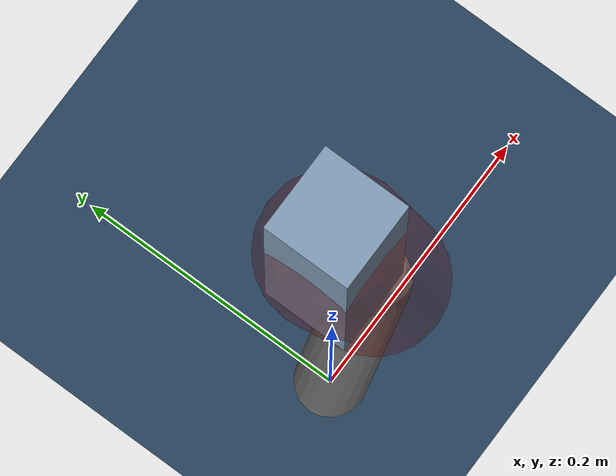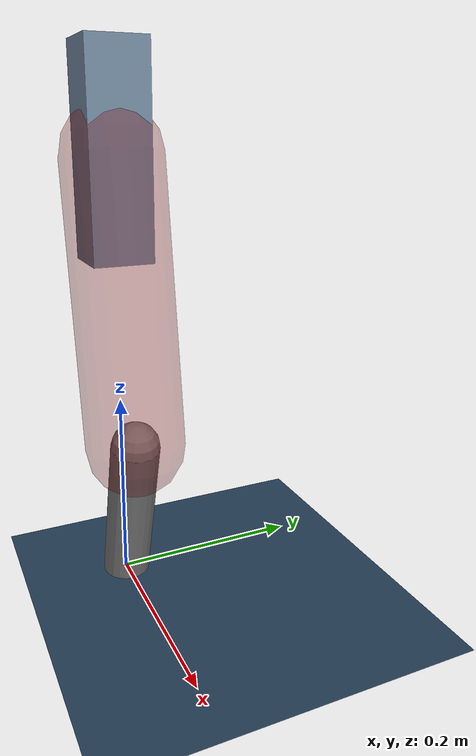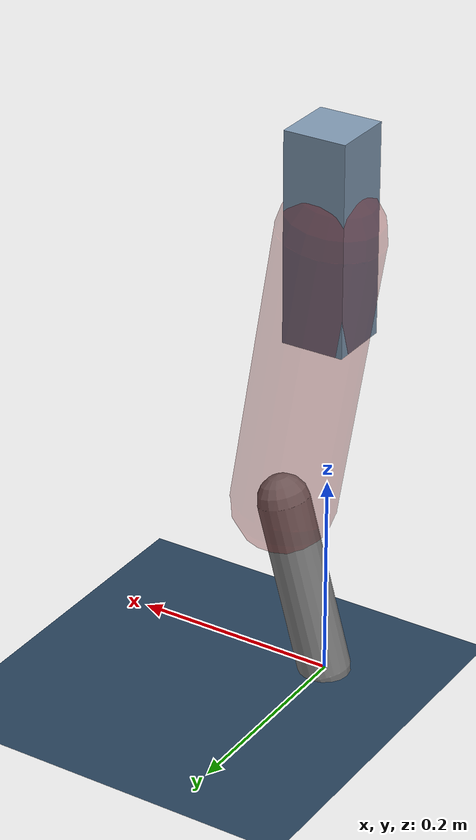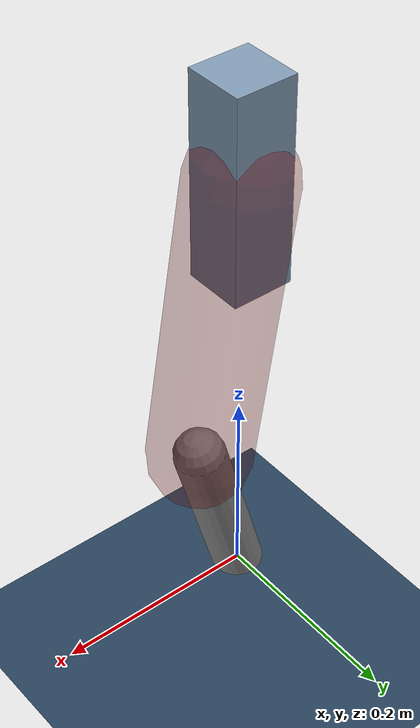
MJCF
<mujoco model="Hopper2D">
	<compiler inertiafromgeom="true" angle="radian" />
	<option timestep="0.001" integrator="implicit" cone="elliptic" solver="Newton" tolerance="1e-10" />

	<default>
		<geom contype="1" conaffinity="1" condim="3" friction="2 0.005 0.0001" solref="0.005 1" />
		<joint limited="true" damping="0.1" />
	</default>

	<asset>
		<texture name="skybox" type="skybox" builtin="gradient" rgb1=".4 .6 .8" rgb2="0 0 0" width="800" height="800" />
		<texture name="grid" type="2d" builtin="checker" rgb1=".1 .2 .3" rgb2=".2 .3 .4" width="300" height="300" mark="edge" markrgb=".2 .3 .4" />
		<material name="ground" texture="grid" texrepeat="1 1" texuniform="true" reflectance="0.1" />
		<material name="leg" rgba="0.5 0.6 0.7 1" />
	</asset>

	<worldbody>

		<geom name="floor" type="plane" size="5 5 0.25" material="ground" />

		<light directional="false" diffuse="0.8 0.8 0.8" specular="0.3 0.3 0.3" pos="0 0 2" dir="0 0 -1" />
		<light mode="targetbodycom" target="base" directional="false" diffuse="0.8 0.8 0.8" specular="0.3 0.3 0.3" pos="0 0 2" dir="0 0 -1" />

		<camera name="fixed" pos="0 -2 1" xyaxes="1 0 0 0 0 1" />
		<camera name="tracking" mode="trackcom" pos="0 -3 1" />

		<body name="root" pos="0 0 0.44657164454264964">
			<joint name="slide_x" type="slide" axis="1 0 0" range="-100 100" />
			<joint name="slide_z" type="slide" axis="0 0 1" range="0 10" />

			<body name="base" pos="0 0 0">
				<geom name="torso" type="box" size="0.03 0.03 0.1" mass="2.065" material="leg" />

				<body name="link1" pos="0 0 0" euler="0 1.4071755620952349 0">
					<joint type="hinge" axis="0 -1 0" pos="0 0 0" name="hinge1" limited="true" range="-3.14 3.14" stiffness="0" damping="0.1" />
					<geom name="thigh" type="capsule" fromto="0 0 0 0.28286113296266735 0 0" size="0.05" rgba="0.5 0 0 0.3" mass="0.942725058999202" />

					<body name="link2" pos="0.28286113296266735 0 0" euler="0 0.4320780531691784 0">
						<joint type="hinge" axis="0 -1 0" pos="0 0 0" name="hinge2" limited="true" range="-3.14 3.14" stiffness="0" damping="0.1" />
						<geom name="shank" type="capsule" fromto="0 0 0 0.17371051157998227 0 0" size="0.025" mass="0.37846840926398584" />

					</body>
				</body>
			</body>
		</body>
	</worldbody>

	<actuator>
		<motor name="torque1" joint="hinge1" ctrlrange="-59.94635655847294 59.94635655847294" ctrllimited="true" gear="1" />
		<motor name="torque2" joint="hinge2" ctrlrange="-56.735346635274865 56.735346635274865" ctrllimited="true" gear="1" />
	</actuator>
</mujoco>
